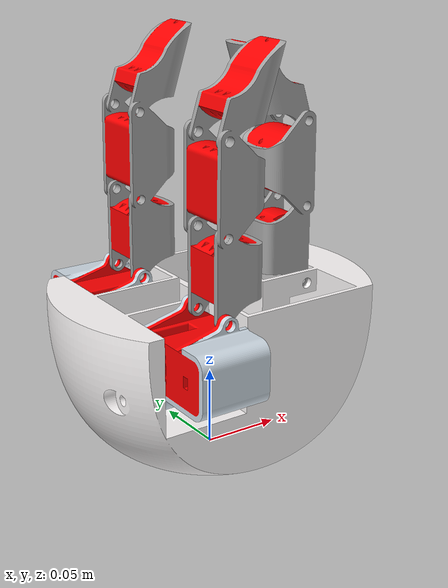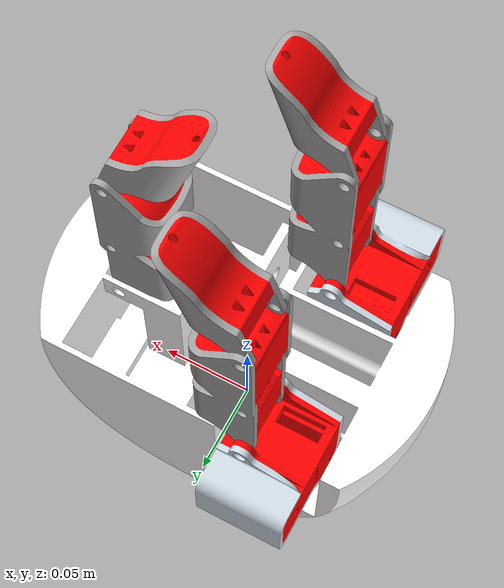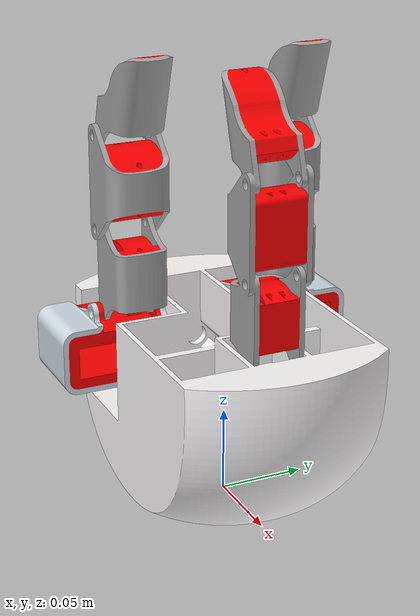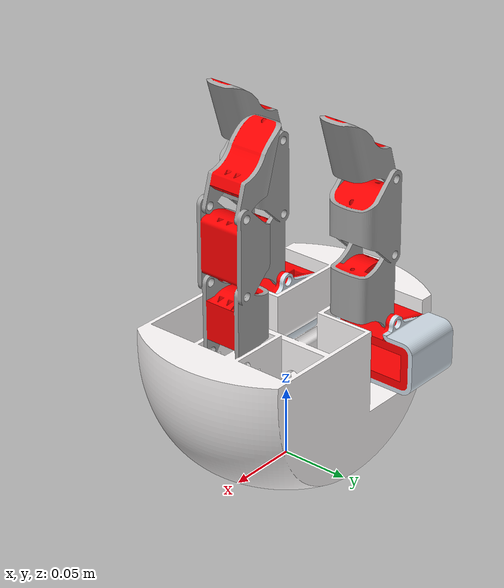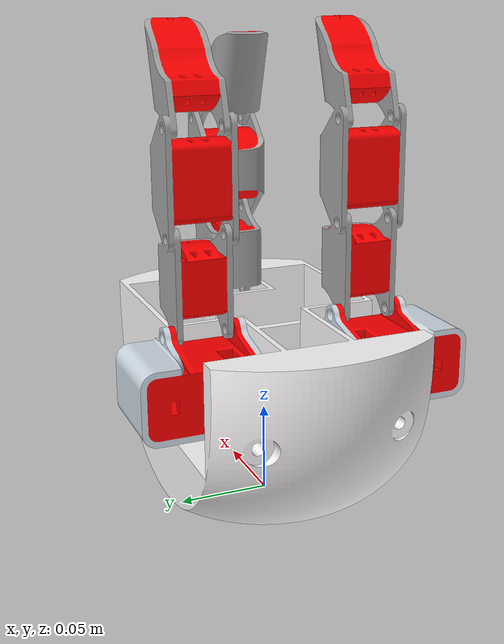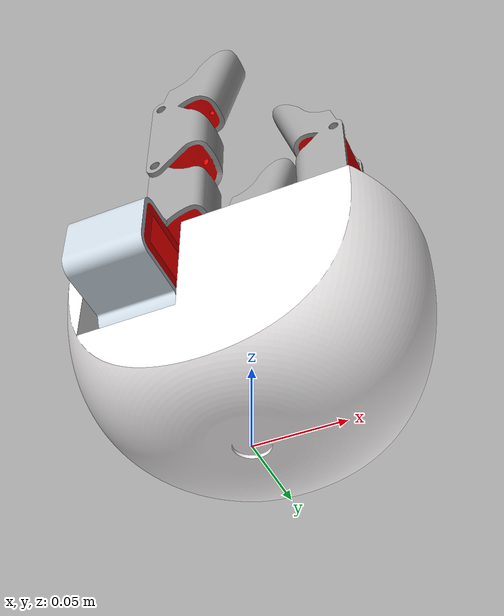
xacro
<?xml version="1.0" ?>
<robot xmlns:xacro="http://www.ros.org/wiki/xacro" name="robot">

    <!-- # include statements, much like import statements -->
    <xacro:include filename="$(find arm_urdf)/urdf/gripper_urdf.xacro"/>

    <!-- # constants -->
    <xacro:property name="gripper_prefix" value="gripper1" />

    <!-- # Etc -->
    <!-- NOTE: order of execution of xacro does not matter -->

    <!-- name must be kept as "world" for it is a Gazebo keyword for world origin -->
    <link name="world"/>

    <!-- using gripper macro defined in gripper_urdf.xacro to define robot -->
    <xacro:gripper prefix="${gripper_prefix}"/>

    <!-- connect the arm to world with fixed joint -->
    <joint name="base" type="fixed">
        <parent link="world" />
        <child link="${gripper_prefix}_palm" />
    </joint>
</robot>

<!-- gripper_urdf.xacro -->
<robot xmlns:xacro="http://www.ros.org/wiki/xacro">
    <xacro:macro name="gripper" params="prefix">

        <!-- links -->
        <link name="${prefix}_palm">
            <visual>
            <origin rpy="0 0 0" xyz="0 0 0.11"/>
            <geometry>
                <mesh filename="package://arm_urdf/meshes/Palm.dae"/>
            </geometry>
            </visual>

            <collision>
            <origin rpy="0 0 0" xyz="0 0 0.11"/>
            <geometry>
                <mesh filename="package://arm_urdf/meshes/Palm.dae"/>
            </geometry>
            </collision>

            <inertial>
            <mass value="0.5"/>
            <inertia ixx="0.4" ixy="0.0" ixz="0.0" iyy="0.4" iyz="0.0" izz="0.2"/>
            </inertial>
        </link>

        <!-- left finger -->
        <link name="${prefix}_hub_left">
            <visual>
            <origin rpy="0 0 ${radians(90)}" xyz="0 0.02 0.002"/>
            <geometry>
                <mesh filename="package://arm_urdf/meshes/Hub Left.dae"/>
            </geometry>
            </visual>

            <collision>
            <origin rpy="0 0 ${radians(90)}" xyz="0 0.02 0.002"/>
            <geometry>
                <mesh filename="package://arm_urdf/meshes/Hub Left.dae"/>
            </geometry>
            </collision>

            <inertial>
            <mass value="0.5"/>
            <inertia ixx="0.4" ixy="0.0" ixz="0.0" iyy="0.4" iyz="0.0" izz="0.2"/>
            </inertial>
        </link>

        <link name="${prefix}_finger_left">
            <visual>
            <origin rpy="0 ${radians(90)} ${radians(90)}" xyz="-0.002 0 0.02"/>
            <geometry>
                <mesh filename="package://arm_urdf/meshes/Finger Assembly.dae"/>
            </geometry>
            </visual>

            <collision>
            <origin rpy="0 ${radians(90)} ${radians(90)}" xyz="-0.002 0 0.02"/>
            <geometry>
                <mesh filename="package://arm_urdf/meshes/Finger Assembly.dae"/>
            </geometry>
            </collision>

            <inertial>
            <mass value="0.5"/>
            <inertia ixx="0.4" ixy="0.0" ixz="0.0" iyy="0.4" iyz="0.0" izz="0.2"/>
            </inertial>
        </link>

        <!-- right finger -->
        <link name="${prefix}_hub_right">
            <visual>
            <origin rpy="0 0 ${radians(90)}" xyz="0 0.02 0.002"/>
            <geometry>
                <mesh filename="package://arm_urdf/meshes/Hub Right.dae"/>
            </geometry>
            </visual>

            <collision>
            <origin rpy="0 0 ${radians(90)}" xyz="0 0.02 0.002"/>
            <geometry>
                <mesh filename="package://arm_urdf/meshes/Hub Right.dae"/>
            </geometry>
            </collision>

            <inertial>
            <mass value="0.5"/>
            <inertia ixx="0.4" ixy="0.0" ixz="0.0" iyy="0.4" iyz="0.0" izz="0.2"/>
            </inertial>
        </link>

        <link name="${prefix}_finger_right">
            <visual>
            <origin rpy="0 ${radians(90)} ${radians(90)}" xyz="-0.002 0 0.02"/>
            <geometry>
                <mesh filename="package://arm_urdf/meshes/Finger Assembly.dae"/>
            </geometry>
            </visual>

            <collision>
            <origin rpy="0 ${radians(90)} ${radians(90)}" xyz="-0.002 0 0.02"/>
            <geometry>
                <mesh filename="package://arm_urdf/meshes/Finger Assembly.dae"/>
            </geometry>
            </collision>

            <inertial>
            <mass value="0.5"/>
            <inertia ixx="0.4" ixy="0.0" ixz="0.0" iyy="0.4" iyz="0.0" izz="0.2"/>
            </inertial>
        </link>

        <link name="${prefix}_finger_thumb">
            <visual>
            <origin rpy="0 ${radians(90)} ${radians(90)}" xyz="-0.002 0 0.02"/>
            <geometry>
                <mesh filename="package://arm_urdf/meshes/Finger Assembly.dae"/>
            </geometry>
            </visual>

            <collision>
            <origin rpy="0 ${radians(90)} ${radians(90)}" xyz="-0.002 0 0.02"/>
            <geometry>
                <mesh filename="package://arm_urdf/meshes/Finger Assembly.dae"/>
            </geometry>
            </collision>

            <inertial>
            <mass value="0.5"/>
            <inertia ixx="0.4" ixy="0.0" ixz="0.0" iyy="0.4" iyz="0.0" izz="0.2"/>
            </inertial>
        </link>

        <!-- joints -->

        <!-- left finger joints  -->
        <joint name="${prefix}_palm_hub_left_joint" type="revolute">
            <origin rpy="0 0 0" xyz="-0.065 -0.038 0.068"/>
            <axis xyz="1 0 0"/>
            <limit effort="1000.0" lower="${radians(0)}" upper="${radians(35)}" velocity="0.5"/>
            <parent link="${prefix}_palm" />
            <child link="${prefix}_hub_left" />

            <dynamics D="1" K="7000" mu_coulomb="0" mu_viscous="16" damping="0.003" friction="0.0"/>
        </joint>

        <joint name="${prefix}_hub_left_finger_left_joint" type="revolute">
            <origin rpy="0 0 0" xyz="0.033 -0.0145 0.043"/>
            <axis xyz="0 1 0"/>
            <limit effort="1000.0" lower="${radians(-80)}" upper="${radians(15)}" velocity="0.5"/>
            <parent link="${prefix}_hub_left" />
            <child link="${prefix}_finger_left" />

            <dynamics D="1" K="7000" mu_coulomb="0" mu_viscous="16" damping="0.003" friction="0.0"/>
        </joint>

        <!-- right finger joints  -->
        <joint name="${prefix}_palm_hub_right_joint" type="revolute">
            <origin rpy="0 0 0" xyz="-0.065 0.038 0.068"/>
            <axis xyz="1 0 0"/>
            <limit effort="1000.0" lower="${radians(-35)}" upper="${radians(0)}" velocity="0.5"/>
            <parent link="${prefix}_palm" />
            <child link="${prefix}_hub_right" />

            <dynamics D="1" K="7000" mu_coulomb="0" mu_viscous="16" damping="0.003" friction="0.0"/>
        </joint>

        <joint name="${prefix}_hub_right_finger_right_joint" type="revolute">
            <origin rpy="0 0 0" xyz="0.033 0.0025 0.043"/>
            <axis xyz="0 1 0"/>
            <limit effort="1000.0" lower="${radians(-80)}" upper="${radians(15)}" velocity="0.5"/>
            <parent link="${prefix}_hub_right" />
            <child link="${prefix}_finger_right" />

            <dynamics D="1" K="7000" mu_coulomb="0" mu_viscous="16" damping="0.003" friction="0.0"/>
        </joint>

        <!-- thumb finger joint -->
        <joint name="${prefix}_palm_finger_thumb_joint" type="revolute">
            <origin rpy="0 0 ${radians(180)}" xyz="0.062 0.007 0.103"/>
            <axis xyz="0 1 0"/>
            <limit effort="1000.0" lower="${radians(-20)}" upper="${radians(10)}" velocity="0.5"/>
            <parent link="${prefix}_palm" />
            <child link="${prefix}_finger_thumb" />

            <dynamics D="1" K="7000" mu_coulomb="0" mu_viscous="16" damping="0.003" friction="0.0"/>
        </joint>

    </xacro:macro>
</robot>
